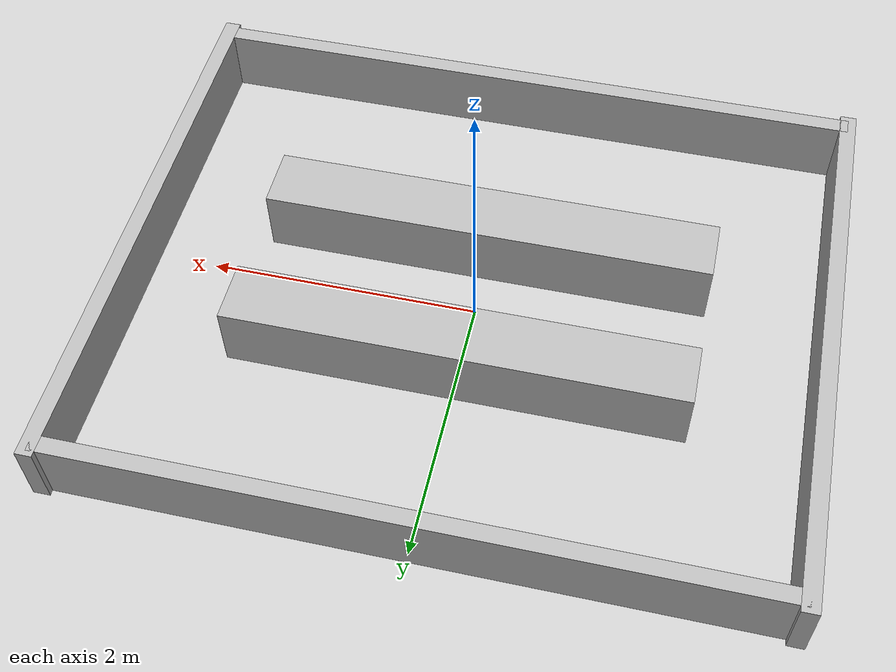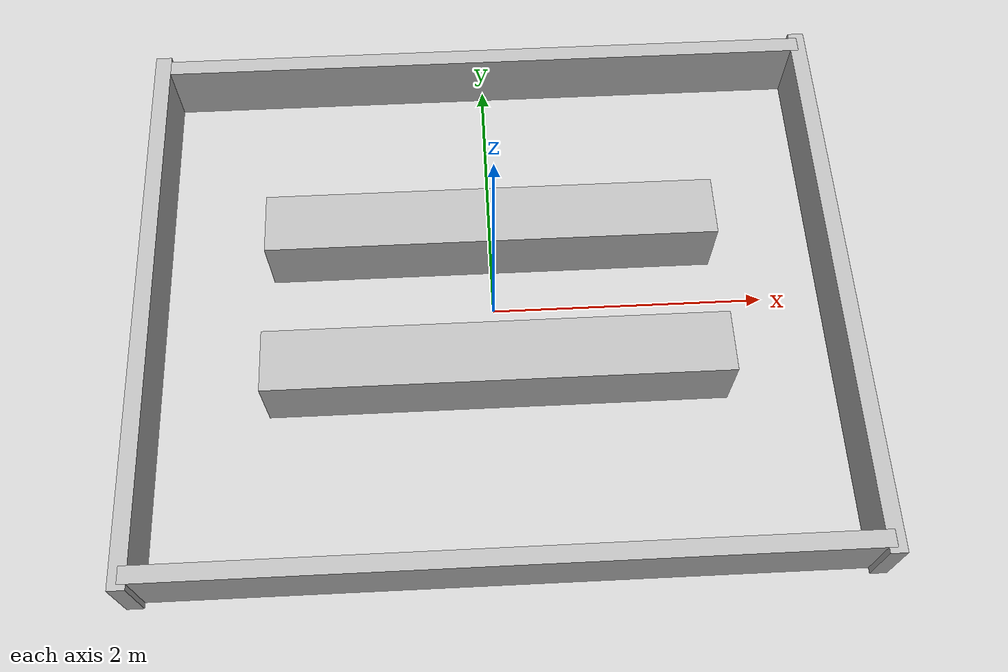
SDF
<?xml version="1.0"?>
<sdf version="1.6">
  <world name="narrow_corridor">
    <include>
      <uri>model://sun</uri>
    </include>
    <include>
      <uri>model://ground_plane</uri>
    </include>

    <model name="outer_north_wall">
      <static>true</static>
      <pose>0 2 0.25 0 0 0</pose>
      <link name="link">
        <collision name="collision"><geometry><box><size>5.0 0.12 0.5</size></box></geometry></collision>
        <visual name="visual"><geometry><box><size>5.0 0.12 0.5</size></box></geometry></visual>
      </link>
    </model>
    <model name="outer_south_wall">
      <static>true</static>
      <pose>0 -2 0.25 0 0 0</pose>
      <link name="link">
        <collision name="collision"><geometry><box><size>5.0 0.12 0.5</size></box></geometry></collision>
        <visual name="visual"><geometry><box><size>5.0 0.12 0.5</size></box></geometry></visual>
      </link>
    </model>
    <model name="outer_east_wall">
      <static>true</static>
      <pose>2.5 0 0.25 0 0 0</pose>
      <link name="link">
        <collision name="collision"><geometry><box><size>0.12 4.2 0.5</size></box></geometry></collision>
        <visual name="visual"><geometry><box><size>0.12 4.2 0.5</size></box></geometry></visual>
      </link>
    </model>
    <model name="outer_west_wall">
      <static>true</static>
      <pose>-2.5 0 0.25 0 0 0</pose>
      <link name="link">
        <collision name="collision"><geometry><box><size>0.12 4.2 0.5</size></box></geometry></collision>
        <visual name="visual"><geometry><box><size>0.12 4.2 0.5</size></box></geometry></visual>
      </link>
    </model>
    <model name="corridor_top_block">
      <static>true</static>
      <pose>0 0.55 0.25 0 0 0</pose>
      <link name="link">
        <collision name="collision"><geometry><box><size>3.3 0.45 0.5</size></box></geometry></collision>
        <visual name="visual"><geometry><box><size>3.3 0.45 0.5</size></box></geometry></visual>
      </link>
    </model>
    <model name="corridor_bottom_block">
      <static>true</static>
      <pose>0 -0.55 0.25 0 0 0</pose>
      <link name="link">
        <collision name="collision"><geometry><box><size>3.3 0.45 0.5</size></box></geometry></collision>
        <visual name="visual"><geometry><box><size>3.3 0.45 0.5</size></box></geometry></visual>
      </link>
    </model>
  </world>
</sdf>
